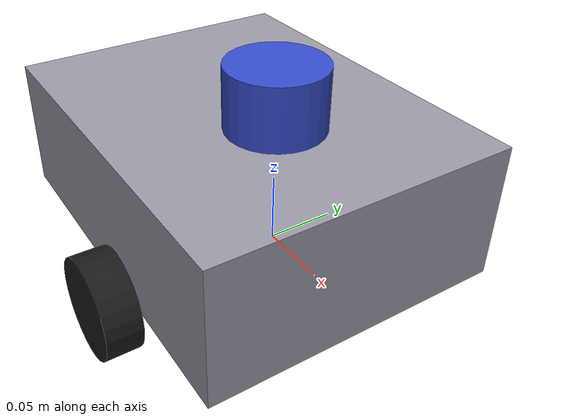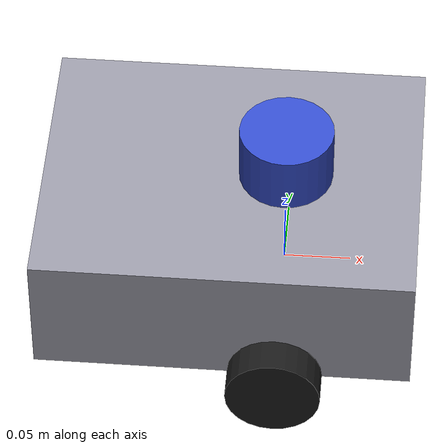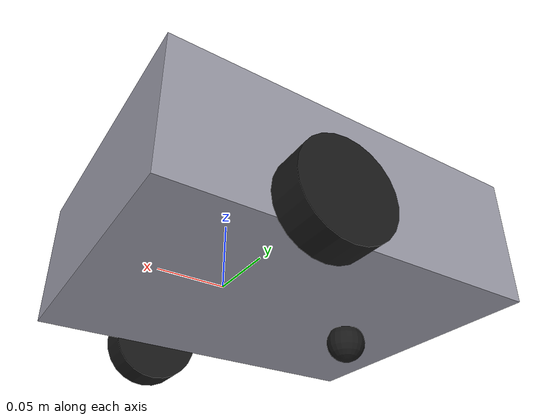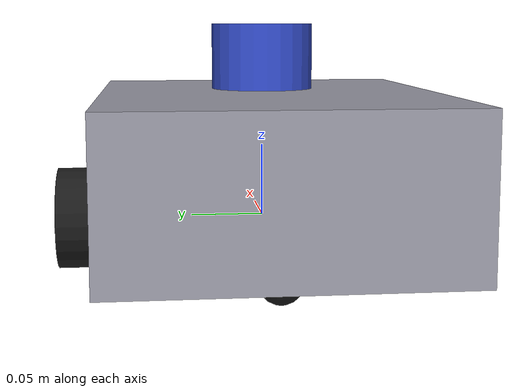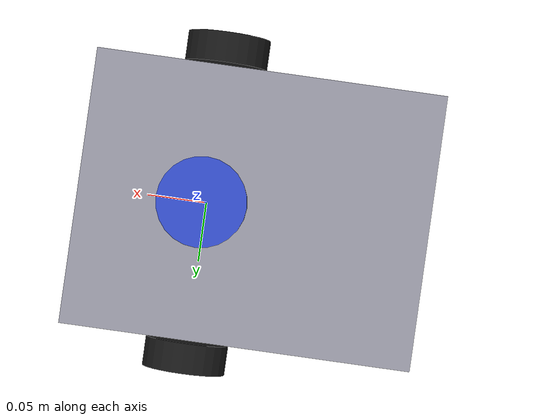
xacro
<?xml version="1.0"?>
<robot name="gnssd_robot" xmlns:xacro="http://www.ros.org/wiki/xacro">

  <xacro:include filename="$(find gnssd_description)/urdf/robot_params.xacro"/>

  <!-- ===================== Helpers ===================== -->

  <!-- Inertia tensors of simple solid shapes (standard textbook formulas). -->
  <xacro:macro name="box_inertial" params="mass x y z">
    <inertial>
      <mass value="${mass}"/>
      <inertia ixx="${mass / 12 * (y*y + z*z)}" ixy="0" ixz="0"
               iyy="${mass / 12 * (x*x + z*z)}" iyz="0"
               izz="${mass / 12 * (x*x + y*y)}"/>
    </inertial>
  </xacro:macro>

  <!-- Cylinder whose axis is the link's z axis. -->
  <xacro:macro name="cylinder_inertial" params="mass radius length">
    <inertial>
      <mass value="${mass}"/>
      <inertia ixx="${mass / 12 * (3*radius*radius + length*length)}" ixy="0" ixz="0"
               iyy="${mass / 12 * (3*radius*radius + length*length)}" iyz="0"
               izz="${mass / 2 * radius*radius}"/>
    </inertial>
  </xacro:macro>

  <xacro:macro name="sphere_inertial" params="mass radius">
    <inertial>
      <mass value="${mass}"/>
      <inertia ixx="${2 / 5 * mass * radius*radius}" ixy="0" ixz="0"
               iyy="${2 / 5 * mass * radius*radius}" iyz="0"
               izz="${2 / 5 * mass * radius*radius}"/>
    </inertial>
  </xacro:macro>

  <material name="body_grey"><color rgba="0.6 0.6 0.65 1"/></material>
  <material name="wheel_black"><color rgba="0.1 0.1 0.1 1"/></material>
  <material name="sensor_blue"><color rgba="0.2 0.3 0.8 1"/></material>

  <!-- ===================== Links ===================== -->

  <link name="base_link"/>

  <link name="chassis_link">
    <visual>
      <geometry><box size="${chassis_length} ${chassis_width} ${chassis_height}"/></geometry>
      <material name="body_grey"/>
    </visual>
    <collision>
      <geometry><box size="${chassis_length} ${chassis_width} ${chassis_height}"/></geometry>
    </collision>
    <xacro:box_inertial mass="${chassis_mass}"
                        x="${chassis_length}" y="${chassis_width}" z="${chassis_height}"/>
  </link>

  <joint name="chassis_joint" type="fixed">
    <parent link="base_link"/>
    <child link="chassis_link"/>
    <origin xyz="${chassis_x_offset} 0 ${chassis_z_offset}"/>
  </joint>

  <xacro:macro name="wheel" params="side side_sign">
    <link name="${side}_wheel_link">
      <visual>
        <geometry><cylinder radius="${wheel_radius}" length="${wheel_width}"/></geometry>
        <material name="wheel_black"/>
      </visual>
      <collision>
        <geometry><sphere radius="${wheel_radius}"/></geometry>
      </collision>
      <xacro:cylinder_inertial mass="${wheel_mass}" radius="${wheel_radius}"
                               length="${wheel_width}"/>
    </link>

    <joint name="${side}_wheel_joint" type="continuous">
      <parent link="base_link"/>
      <child link="${side}_wheel_link"/>
      <origin xyz="0 ${side_sign * wheel_separation / 2} 0" rpy="${-pi / 2} 0 0"/>
      <axis xyz="0 0 1"/>
    </joint>
  </xacro:macro>

  <xacro:wheel side="left" side_sign="1"/>
  <xacro:wheel side="right" side_sign="-1"/>

  <link name="caster_link">
    <visual>
      <geometry><sphere radius="${caster_radius}"/></geometry>
      <material name="wheel_black"/>
    </visual>
    <collision>
      <geometry><sphere radius="${caster_radius}"/></geometry>
    </collision>
    <xacro:sphere_inertial mass="${caster_mass}" radius="${caster_radius}"/>
  </link>

  <joint name="caster_joint" type="fixed">
    <parent link="base_link"/>
    <child link="caster_link"/>
    <origin xyz="${caster_x_offset} 0 ${caster_z_offset}"/>
  </joint>

  <link name="lidar_link">
    <visual>
      <geometry><cylinder radius="${lidar_radius}" length="${lidar_height}"/></geometry>
      <material name="sensor_blue"/>
    </visual>
    <collision>
      <geometry><cylinder radius="${lidar_radius}" length="${lidar_height}"/></geometry>
    </collision>
    <xacro:cylinder_inertial mass="${lidar_mass}" radius="${lidar_radius}"
                             length="${lidar_height}"/>
  </link>

  <joint name="lidar_joint" type="fixed">
    <parent link="base_link"/>
    <child link="lidar_link"/>
    <origin xyz="${lidar_x_offset} 0 ${lidar_z_offset}"/>
  </joint>

  <link name="imu_link">
    <visual>
      <geometry><box size="${imu_size} ${imu_size} ${imu_size}"/></geometry>
      <material name="sensor_blue"/>
    </visual>
    <xacro:box_inertial mass="${imu_mass}" x="${imu_size}" y="${imu_size}" z="${imu_size}"/>
  </link>

  <joint name="imu_joint" type="fixed">
    <parent link="base_link"/>
    <child link="imu_link"/>
    <origin xyz="${imu_x_offset} 0 ${imu_z_offset}"/>
  </joint>

  <!-- ===================== Gazebo: contact properties ===================== -->

  <!-- The caster is a passive ball: no friction, so it just slides along. -->
  <gazebo reference="caster_link">
    <mu1>0.0</mu1>
    <mu2>0.0</mu2>
  </gazebo>

  <!-- ===================== Gazebo: sensors ===================== -->

  <gazebo reference="lidar_link">
    <sensor name="lidar" type="gpu_lidar">
      <topic>scan</topic>
      <gz_frame_id>lidar_link</gz_frame_id>
      <update_rate>${lidar_update_rate}</update_rate>
      <always_on>true</always_on>
      <visualize>true</visualize>
      <lidar>
        <scan>
          <horizontal>
            <samples>${lidar_samples}</samples>
            <resolution>1</resolution>
            <min_angle>${-pi}</min_angle>
            <max_angle>${pi - 2 * pi / lidar_samples}</max_angle>
          </horizontal>
          <vertical>
            <samples>1</samples>
            <resolution>1</resolution>
            <min_angle>0</min_angle>
            <max_angle>0</max_angle>
          </vertical>
        </scan>
        <range>
          <min>${lidar_range_min}</min>
          <max>${lidar_range_max}</max>
          <resolution>0.01</resolution>
        </range>
        <noise>
          <type>gaussian</type>
          <mean>0.0</mean>
          <stddev>${lidar_noise_stddev}</stddev>
        </noise>
      </lidar>
    </sensor>
  </gazebo>

  <!-- Noise block shared by the three gyro axes and by the three accelerometer axes.
       The dynamic (in-run) bias is optional; 0 switches it off. -->
  <xacro:macro name="imu_axis_noise"
               params="axis stddev bias_mean bias_stddev dynamic_bias_stddev:=0.0 dynamic_bias_corr_time:=0.0">
    <xacro:element xacro:name="${axis}">
      <noise type="gaussian">
        <mean>0.0</mean>
        <stddev>${stddev}</stddev>
        <bias_mean>${bias_mean}</bias_mean>
        <bias_stddev>${bias_stddev}</bias_stddev>
        <dynamic_bias_stddev>${dynamic_bias_stddev}</dynamic_bias_stddev>
        <dynamic_bias_correlation_time>${dynamic_bias_corr_time}</dynamic_bias_correlation_time>
      </noise>
    </xacro:element>
  </xacro:macro>

  <!-- gz-sensors parameter for the gyro drift: the stationary value from
       robot_params.xacro divided by sqrt(tau / 2) (see the note there). -->
  <xacro:property name="gyro_dynamic_bias_sigma_gz"
                  value="${imu_gyro_dynamic_bias_stddev / (imu_gyro_dynamic_bias_corr_time / 2) ** 0.5}"/>

  <gazebo reference="imu_link">
    <sensor name="imu" type="imu">
      <topic>imu</topic>
      <gz_frame_id>imu_link</gz_frame_id>
      <update_rate>${imu_update_rate}</update_rate>
      <always_on>true</always_on>
      <imu>
        <angular_velocity>
          <xacro:imu_axis_noise axis="x" stddev="${imu_gyro_noise_stddev}"
              bias_mean="${imu_gyro_bias_mean}" bias_stddev="${imu_gyro_bias_stddev}"
              dynamic_bias_stddev="${gyro_dynamic_bias_sigma_gz}"
              dynamic_bias_corr_time="${imu_gyro_dynamic_bias_corr_time}"/>
          <xacro:imu_axis_noise axis="y" stddev="${imu_gyro_noise_stddev}"
              bias_mean="${imu_gyro_bias_mean}" bias_stddev="${imu_gyro_bias_stddev}"
              dynamic_bias_stddev="${gyro_dynamic_bias_sigma_gz}"
              dynamic_bias_corr_time="${imu_gyro_dynamic_bias_corr_time}"/>
          <xacro:imu_axis_noise axis="z" stddev="${imu_gyro_noise_stddev}"
              bias_mean="${imu_gyro_bias_mean}" bias_stddev="${imu_gyro_bias_stddev}"
              dynamic_bias_stddev="${gyro_dynamic_bias_sigma_gz}"
              dynamic_bias_corr_time="${imu_gyro_dynamic_bias_corr_time}"/>
        </angular_velocity>
        <linear_acceleration>
          <xacro:imu_axis_noise axis="x" stddev="${imu_accel_noise_stddev}"
              bias_mean="${imu_accel_bias_mean}" bias_stddev="${imu_accel_bias_stddev}"/>
          <xacro:imu_axis_noise axis="y" stddev="${imu_accel_noise_stddev}"
              bias_mean="${imu_accel_bias_mean}" bias_stddev="${imu_accel_bias_stddev}"/>
          <xacro:imu_axis_noise axis="z" stddev="${imu_accel_noise_stddev}"
              bias_mean="${imu_accel_bias_mean}" bias_stddev="${imu_accel_bias_stddev}"/>
        </linear_acceleration>
      </imu>
    </sensor>
  </gazebo>

  <!-- ===================== Gazebo: drive and joint states ===================== -->

  <gazebo>
    <plugin filename="gz-sim-diff-drive-system" name="gz::sim::systems::DiffDrive">
      <left_joint>left_wheel_joint</left_joint>
      <right_joint>right_wheel_joint</right_joint>
      <wheel_separation>${wheel_separation}</wheel_separation>
      <wheel_radius>${wheel_radius}</wheel_radius>
      <topic>cmd_vel</topic>
      <odom_topic>odom_raw</odom_topic>
      <odom_publish_frequency>${odom_publish_rate}</odom_publish_frequency>
      <frame_id>odom</frame_id>
      <child_frame_id>base_link</child_frame_id>
      <tf_topic>gz_diff_drive_tf_not_bridged</tf_topic>
    </plugin>

    <plugin filename="gz-sim-joint-state-publisher-system"
            name="gz::sim::systems::JointStatePublisher">
      <topic>joint_states</topic>
    </plugin>

    <plugin filename="gz-sim-odometry-publisher-system"
            name="gz::sim::systems::OdometryPublisher">
      <odom_topic>ground_truth</odom_topic>
      <odom_frame>world</odom_frame>
      <robot_base_frame>base_link</robot_base_frame>
      <odom_publish_frequency>${ground_truth_publish_rate}</odom_publish_frequency>
      <dimensions>2</dimensions>
      <gaussian_noise>0.0</gaussian_noise>
      <tf_topic>gz_ground_truth_tf_not_bridged</tf_topic>
    </plugin>
  </gazebo>

</robot>

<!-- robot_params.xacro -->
<robot xmlns:xacro="http://www.ros.org/wiki/xacro">

  <!-- ===================== Chassis ===================== -->
  <xacro:property name="chassis_length" value="0.28"/>
  <xacro:property name="chassis_width"  value="0.22"/>
  <xacro:property name="chassis_height" value="0.10"/>
  <xacro:property name="chassis_mass"   value="2.0"/>
  <xacro:property name="chassis_x_offset" value="-0.04"/>
  <xacro:property name="chassis_z_offset" value="0.04"/>

  <!-- ===================== Drive wheels ===================== -->
  <xacro:property name="wheel_radius"     value="0.035"/>
  <xacro:property name="wheel_width"      value="0.025"/>
  <xacro:property name="wheel_mass"       value="0.15"/>
  <!-- Distance between the centres of the two wheels (track width). -->
  <xacro:property name="wheel_separation" value="0.26"/>

  <!-- ===================== Rear caster ===================== -->
  <xacro:property name="caster_radius"   value="0.015"/>
  <xacro:property name="caster_mass"     value="0.05"/>
  <xacro:property name="caster_x_offset" value="-0.11"/>
  <!-- The caster must touch the ground together with the wheels:
       its centre is (wheel_radius - caster_radius) below the axle. -->
  <xacro:property name="caster_z_offset" value="${caster_radius - wheel_radius}"/>

  <!-- ===================== 2D lidar ===================== -->
  <!-- Body roughly the size of an RPLIDAR A1, mounted on top of the chassis. -->
  <xacro:property name="lidar_radius"   value="0.035"/>
  <xacro:property name="lidar_height"   value="0.045"/>
  <xacro:property name="lidar_mass"     value="0.17"/>
  <xacro:property name="lidar_x_offset" value="0.0"/>
  <xacro:property name="lidar_z_offset"
                  value="${chassis_z_offset + chassis_height / 2 + lidar_height / 2}"/>

  <xacro:property name="lidar_update_rate"  value="10"/>     <!-- Hz -->
  <xacro:property name="lidar_samples"      value="360"/>    <!-- one beam per degree -->
  <xacro:property name="lidar_range_min"    value="0.12"/>
  <xacro:property name="lidar_range_max"    value="12.0"/>
  <xacro:property name="lidar_noise_stddev" value="0.01"/>   <!-- m, gaussian range noise -->

  <!-- ===================== IMU ===================== -->
  <xacro:property name="imu_size"     value="0.02"/>
  <xacro:property name="imu_mass"     value="0.01"/>
  <xacro:property name="imu_x_offset" value="0.0"/>
  <xacro:property name="imu_z_offset" value="0.02"/>
  <xacro:property name="imu_update_rate" value="100"/>   <!-- Hz -->

  <xacro:property name="imu_gyro_noise_stddev"            value="0.0017"/>   <!-- rad/s -->
  <xacro:property name="imu_gyro_bias_mean"               value="0.0"/>      <!-- rad/s -->
  <xacro:property name="imu_gyro_bias_stddev"             value="1.0e-4"/>   <!-- rad/s -->
  <xacro:property name="imu_gyro_dynamic_bias_stddev"     value="1.0e-5"/>   <!-- rad/s, stationary -->
  <xacro:property name="imu_gyro_dynamic_bias_corr_time"  value="1000.0"/>

  <!-- Accelerometer: NOT FUSED BY THE EKF (only the gyro z rate is used).
       The values are the old placeholders and only matter if the
       accelerometer is used later. -->
  <xacro:property name="imu_accel_noise_stddev" value="0.02"/>
  <xacro:property name="imu_accel_bias_mean"    value="0.01"/>
  <xacro:property name="imu_accel_bias_stddev"  value="0.001"/>

  <!-- ===================== Drive controller ===================== -->
  <xacro:property name="odom_publish_rate" value="50"/>   <!-- Hz, /odom_raw -->

  <!-- ===================== Ground truth ===================== -->
  <xacro:property name="ground_truth_publish_rate" value="50"/>   <!-- Hz, /ground_truth -->

</robot>
